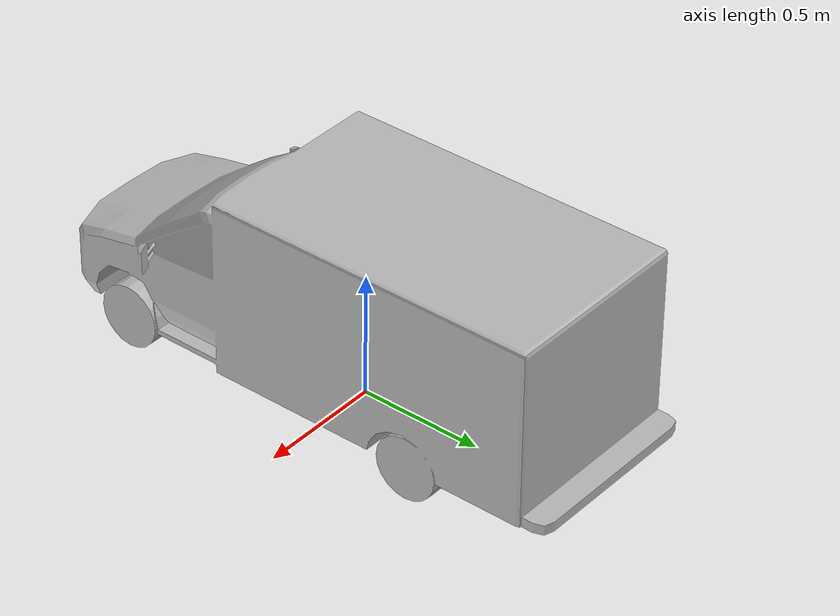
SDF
<?xml version="1.0" ?>
<sdf version="1.6">
  <model name="ambulance">
    <static>true</static>
    <link name="link">
      <collision name="collision">
        <geometry>
          <mesh>
            <scale>0.005 0.005 0.005</scale>
            <uri>model://ambulance/meshes/ambulance.obj</uri>
          </mesh>
        </geometry>
      </collision>
      <visual name="visual">
        <geometry>
          <mesh>
            <scale>0.0075 0.0075 0.0075</scale>
            <uri>model://ambulance/meshes/ambulance.obj</uri>
          </mesh>
        </geometry>
      </visual>
    </link>
  </model>
</sdf>
